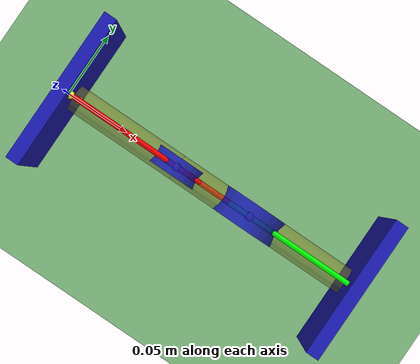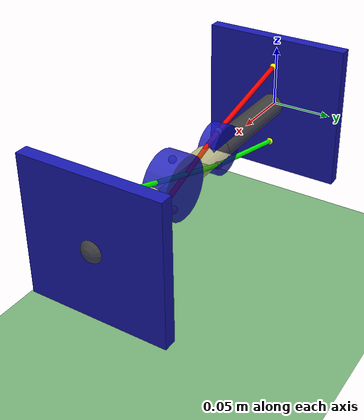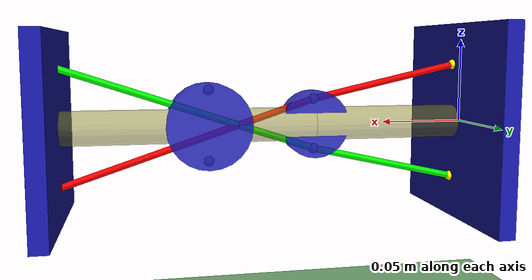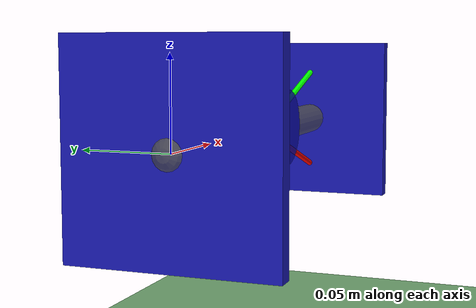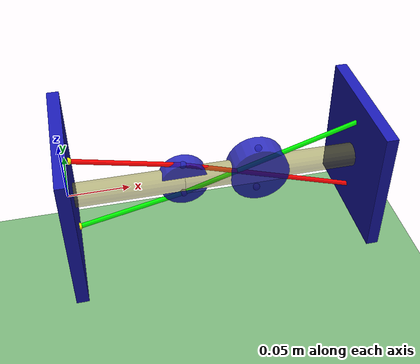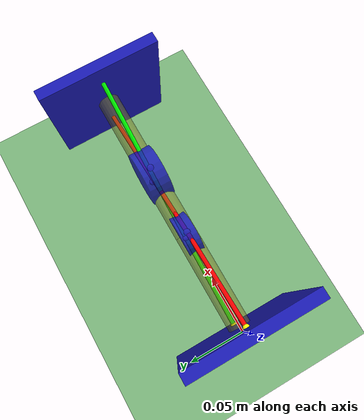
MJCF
<mujoco model="RR_Mechanism">

    <option gravity="0 0 0" integrator="Euler"/>

    <statistic center="0 0 0" extent="0.3"/>

    <visual>
        <rgba haze=".8 .3 .3 1"/>
    </visual>

    <default>
        <geom type="capsule" density="800" size="0.01"/>
        <joint axis="0 1 0" damping="0.001"/>
    </default>

    <asset>
        <texture name="texplane" type="2d" builtin="checker"
                 rgb1=".7 .7 .25" rgb2=".25 .7 .7"
                 width="512" height="512" mark="cross" markrgb=".8 .8 .8"/>
        <material name="matplane" reflectance="0" texture="texplane"
                  texrepeat="1 1" texuniform="true"/>
    </asset>

    <worldbody>

        <light pos="0 0 0.4"/>
        <light pos="0 0 2" dir="0 0 -1" directional="false"/>

        <geom name="floor" pos="0 0 -0.14" size="0 0 1"
              type="plane" material="matplane" conaffinity="15" condim="3"/>

        <!-- LEFT SIDE -->
        <body pos="0 0 0">
            <inertial pos="0 0 0" mass="0.15" diaginertia="0.001 0.001 0.001"/>

            <geom name="left_bound" type="box"
                  size="0.005 0.06 0.06"
                  rgba="0.1 0.1 0.7 1"/>

            <geom fromto="0 0 0 0.094 0 0"
                  rgba=".5 .5 .1 .5" size="0.01" contype="0" conaffinity="0"/>

            <site name="s1" pos="0.005 0 0.035" size=".003" rgba="1 1 0 1"/>
            <site name="s2" pos="0.005 0 -0.035" size=".003" rgba="1 1 0 1"/>

            <!-- FIRST JOINT (ELBOW) -->
            <body pos="0.094 0 0">
                <inertial pos="0 0 0" mass="0.12" diaginertia="0.0008 0.0008 0.0008"/>

                <joint name="elbow"/>

                <geom fromto="0 0 0 0.063 0 0"
                      rgba=".5 .5 .1 .5" size="0.01"/>

                <geom name="Pulley" type="cylinder"
                      fromto="0 .007 0 0 -.007 0"
                      size=".02" rgba=".1 .1 .75 .85"/>

                <site name="s3" pos="0 0 0.015" size=".003"/>
                <site name="s4" pos="0 0 -0.015" size=".003"/>

                <!-- SECOND JOINT (WRIST) -->
                <body pos="0.063 0 0">
                    <inertial pos="0 0 0" mass="0.10" diaginertia="0.0006 0.0006 0.0006"/>

                    <joint name="wrist"/>

                    <geom fromto="0 0 0 0.088 0 0"
                          rgba=".5 .5 .1 .5" size="0.01"/>

                    <geom name="Pulley2" type="cylinder"
                          fromto="0 .01 0 0 -.01 0"
                          size=".025" rgba=".1 .1 .75 .85"/>

                    <site name="s5" pos="0 0 0.021" size=".003"/>
                    <site name="s6" pos="0 0 -0.021" size=".003"/>
                    <site name="s7" pos="0.088 0 0.035" size=".003"/>
                    <site name="s8" pos="0.088 0 -0.035" size=".003"/>

                    <!-- RIGHT SIDE -->
                    <body>
                        <inertial pos="0 0 0" mass="0.15" diaginertia="0.001 0.001 0.001"/>

                        <geom name="right_bound" type="box"
                              size="0.005 0.055 0.055"
                              rgba="0.1 0.1 0.7 1"
                              pos="0.088 0 0"/>
                    </body>

                </body>
            </body>
        </body>

    </worldbody>

    <tendon>
        <spatial stiffness="0.8" rgba="1 0 0 1" width="0.002">
            <site site="s1"/>
            <geom geom="Pulley" sidesite="s3"/>
            <site site="s3"/>
            <geom geom="Pulley2" sidesite="s6"/>
            <site site="s8"/>
        </spatial>

        <spatial stiffness="0.8" rgba="0 1 0 1" width="0.002">
            <site site="s2"/>
            <geom geom="Pulley" sidesite="s4"/>
            <site site="s4"/>
            <geom geom="Pulley2" sidesite="s5"/>
            <site site="s7"/>
        </spatial>
    </tendon>

    <actuator>
        <motor name="m_elbow" joint="elbow" gear="1" ctrlrange="-15 15"/>
        <motor name="m_wrist" joint="wrist" gear="1" ctrlrange="-15 15"/>
    </actuator>

    <sensor>
        <jointpos name="s_elbow_pos" joint="elbow"/>
        <jointvel name="s_elbow_vel" joint="elbow"/>
        <jointpos name="s_wrist_pos" joint="wrist"/>
        <jointvel name="s_wrist_vel" joint="wrist"/>
    </sensor>

</mujoco>
